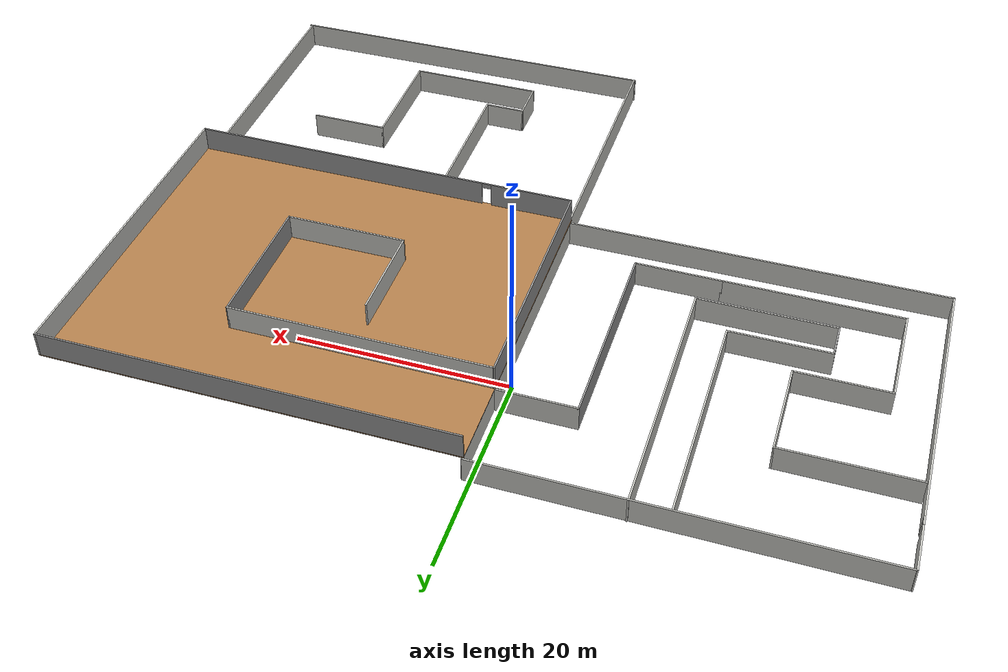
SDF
<?xml version='1.0'?>
<sdf version='1.6'>
  <model name='Surround_2_levels'>
    <pose frame=''>1.94032 -17.2813 0 0 -0 0</pose>
    <link name='Floor_1'>
      <collision name='Floor_1_Collision'>
        <geometry>
          <box>
            <size>38.5579 31.6083 0.1</size>
          </box>
        </geometry>
        <pose frame=''>0 0 0.05 0 -0 0</pose>
      </collision>
      <visual name='Floor_1_Visual'>
        <pose frame=''>0 0 0.05 0 -0 0</pose>
        <geometry>
          <box>
            <size>38.5579 31.6083 0.1</size>
          </box>
        </geometry>
        <material>
          <script>
            <uri>file://media/materials/scripts/gazebo.material</uri>
            <name>Gazebo/Wood</name>
          </script>
          <ambient>1 1 1 1</ambient>
        </material>
      </visual>
      <pose frame=''>17.8862 12.4724 2.5 0 -0 0</pose>
    </link>
    <link name='Wall_101'>
      <collision name='Wall_101_Collision'>
        <geometry>
          <box>
            <size>16 0.15 2.5</size>
          </box>
        </geometry>
        <pose frame=''>0 0 1.25 0 -0 0</pose>
      </collision>
      <visual name='Wall_101_Visual'>
        <pose frame=''>0 0 1.25 0 -0 0</pose>
        <geometry>
          <box>
            <size>16 0.15 2.5</size>
          </box>
        </geometry>
        <material>
          <script>
            <uri>file://media/materials/scripts/gazebo.material</uri>
            <name>Gazebo/CeilingTiled</name>
          </script>
          <ambient>1 1 1 1</ambient>
        </material>
      </visual>
      <pose frame=''>12.3955 -11.3883 0 0 0 -1.5708</pose>
    </link>
    <link name='Wall_102'>
      <collision name='Wall_102_Collision'>
        <geometry>
          <box>
            <size>4 0.15 2.5</size>
          </box>
        </geometry>
        <pose frame=''>0 0 1.25 0 -0 0</pose>
      </collision>
      <visual name='Wall_102_Visual'>
        <pose frame=''>0 0 1.25 0 -0 0</pose>
        <geometry>
          <box>
            <size>4 0.15 2.5</size>
          </box>
        </geometry>
        <material>
          <script>
            <uri>file://media/materials/scripts/gazebo.material</uri>
            <name>Gazebo/CeilingTiled</name>
          </script>
          <ambient>1 1 1 1</ambient>
        </material>
      </visual>
      <pose frame=''>10.4705 -19.3133 0 0 -0 3.14159</pose>
    </link>
    <link name='Wall_103'>
      <collision name='Wall_103_Collision'>
        <geometry>
          <box>
            <size>4 0.15 2.5</size>
          </box>
        </geometry>
        <pose frame=''>0 0 1.25 0 -0 0</pose>
      </collision>
      <visual name='Wall_103_Visual'>
        <pose frame=''>0 0 1.25 0 -0 0</pose>
        <geometry>
          <box>
            <size>4 0.15 2.5</size>
          </box>
        </geometry>
        <material>
          <script>
            <uri>file://media/materials/scripts/gazebo.material</uri>
            <name>Gazebo/CeilingTiled</name>
          </script>
          <ambient>1 1 1 1</ambient>
        </material>
      </visual>
      <pose frame=''>8.54553 -21.2383 0 0 0 -1.5708</pose>
    </link>
    <link name='Wall_104'>
      <collision name='Wall_104_Collision'>
        <geometry>
          <box>
            <size>13 0.15 2.5</size>
          </box>
        </geometry>
        <pose frame=''>0 0 1.25 0 -0 0</pose>
      </collision>
      <visual name='Wall_104_Visual'>
        <pose frame=''>0 0 1.25 0 -0 0</pose>
        <geometry>
          <box>
            <size>13 0.15 2.5</size>
          </box>
        </geometry>
        <material>
          <script>
            <uri>file://media/materials/scripts/gazebo.material</uri>
            <name>Gazebo/CeilingTiled</name>
          </script>
          <ambient>1 1 1 1</ambient>
        </material>
      </visual>
      <pose frame=''>14.9705 -23.1633 0 0 -0 0</pose>
    </link>
    <link name='Wall_105'>
      <collision name='Wall_105_Collision'>
        <geometry>
          <box>
            <size>11.25 0.15 2.5</size>
          </box>
        </geometry>
        <pose frame=''>0 0 1.25 0 -0 0</pose>
      </collision>
      <visual name='Wall_105_Visual'>
        <pose frame=''>0 0 1.25 0 -0 0</pose>
        <geometry>
          <box>
            <size>11.25 0.15 2.5</size>
          </box>
        </geometry>
        <material>
          <script>
            <uri>file://media/materials/scripts/gazebo.material</uri>
            <name>Gazebo/CeilingTiled</name>
          </script>
          <ambient>1 1 1 1</ambient>
        </material>
      </visual>
      <pose frame=''>21.3955 -17.6133 0 0 -0 1.5708</pose>
    </link>
    <link name='Wall_106'>
      <collision name='Wall_106_Collision'>
        <geometry>
          <box>
            <size>7.5 0.15 2.5</size>
          </box>
        </geometry>
        <pose frame=''>0 0 1.25 0 -0 0</pose>
      </collision>
      <visual name='Wall_106_Visual'>
        <pose frame=''>0 0 1.25 0 -0 0</pose>
        <geometry>
          <box>
            <size>7.5 0.15 2.5</size>
          </box>
        </geometry>
        <material>
          <script>
            <uri>file://media/materials/scripts/gazebo.material</uri>
            <name>Gazebo/CeilingTiled</name>
          </script>
          <ambient>1 1 1 1</ambient>
        </material>
      </visual>
      <pose frame=''>25.0705 -12.0633 0 0 -0 0</pose>
    </link>
    <link name='Wall_110'>
      <collision name='Wall_110_Collision'>
        <geometry>
          <box>
            <size>23.5639 0.15 2.5</size>
          </box>
        </geometry>
        <pose frame=''>0 0 1.25 0 -0 0</pose>
      </collision>
      <visual name='Wall_110_Visual'>
        <pose frame=''>0 0 1.25 0 -0 0</pose>
        <geometry>
          <box>
            <size>23.5639 0.15 2.5</size>
          </box>
        </geometry>
        <material>
          <script>
            <uri>file://media/materials/scripts/gazebo.material</uri>
            <name>Gazebo/Grey</name>
          </script>
          <ambient>1 1 1 1</ambient>
        </material>
      </visual>
      <pose frame=''>-1.29066 8.47315 2.5 0 -0 1.5731</pose>
    </link>
    <link name='Wall_31'>
      <collision name='Wall_31_Collision'>
        <geometry>
          <box>
            <size>12.25 0.15 2.5</size>
          </box>
        </geometry>
        <pose frame=''>0 0 1.25 0 -0 0</pose>
      </collision>
      <visual name='Wall_31_Visual'>
        <pose frame=''>0 0 1.25 0 -0 0</pose>
        <geometry>
          <box>
            <size>12.25 0.15 2.5</size>
          </box>
        </geometry>
        <material>
          <script>
            <uri>file://media/materials/scripts/gazebo.material</uri>
            <name>Gazebo/CeilingTiled</name>
          </script>
          <ambient>1 1 1 1</ambient>
        </material>
      </visual>
      <pose frame=''>-30.8176 19.5301 0 0 -0 0</pose>
    </link>
    <link name='Wall_32'>
      <collision name='Wall_32_Collision'>
        <geometry>
          <box>
            <size>9.25 0.15 2.5</size>
          </box>
        </geometry>
        <pose frame=''>0 0 1.25 0 -0 0</pose>
      </collision>
      <visual name='Wall_32_Visual'>
        <pose frame=''>0 0 1.25 0 -0 0</pose>
        <geometry>
          <box>
            <size>9.25 0.15 2.5</size>
          </box>
        </geometry>
        <material>
          <script>
            <uri>file://media/materials/scripts/gazebo.material</uri>
            <name>Gazebo/CeilingTiled</name>
          </script>
          <ambient>1 1 1 1</ambient>
        </material>
      </visual>
      <pose frame=''>-24.7676 14.9801 0 0 0 -1.5708</pose>
    </link>
    <link name='Wall_36'>
      <collision name='Wall_36_Collision'>
        <geometry>
          <box>
            <size>8.75 0.15 2.5</size>
          </box>
        </geometry>
        <pose frame=''>0 0 1.25 0 -0 0</pose>
      </collision>
      <visual name='Wall_36_Visual'>
        <pose frame=''>0 0 1.25 0 -0 0</pose>
        <geometry>
          <box>
            <size>8.75 0.15 2.5</size>
          </box>
        </geometry>
        <material>
          <script>
            <uri>file://media/materials/scripts/gazebo.material</uri>
            <name>Gazebo/CeilingTiled</name>
          </script>
          <ambient>1 1 1 1</ambient>
        </material>
      </visual>
      <pose frame=''>-29.0676 10.4301 0 0 -0 3.14159</pose>
    </link>
    <link name='Wall_37'>
      <collision name='Wall_37_Collision'>
        <geometry>
          <box>
            <size>9.75 0.15 2.5</size>
          </box>
        </geometry>
        <pose frame=''>0 0 1.25 0 -0 0</pose>
      </collision>
      <visual name='Wall_37_Visual'>
        <pose frame=''>0 0 1.25 0 -0 0</pose>
        <geometry>
          <box>
            <size>9.75 0.15 2.5</size>
          </box>
        </geometry>
        <material>
          <script>
            <uri>file://media/materials/scripts/gazebo.material</uri>
            <name>Gazebo/CeilingTiled</name>
          </script>
          <ambient>1 1 1 1</ambient>
        </material>
      </visual>
      <pose frame=''>-33.3676 5.63008 0 0 0 -1.5708</pose>
    </link>
    <link name='Wall_38'>
      <collision name='Wall_38_Collision'>
        <geometry>
          <box>
            <size>16.75 0.15 2.5</size>
          </box>
        </geometry>
        <pose frame=''>0 0 1.25 0 -0 0</pose>
      </collision>
      <visual name='Wall_38_Visual'>
        <pose frame=''>0 0 1.25 0 -0 0</pose>
        <geometry>
          <box>
            <size>16.75 0.15 2.5</size>
          </box>
        </geometry>
        <material>
          <script>
            <uri>file://media/materials/scripts/gazebo.material</uri>
            <name>Gazebo/CeilingTiled</name>
          </script>
          <ambient>1 1 1 1</ambient>
        </material>
      </visual>
      <pose frame=''>-25.0676 0.83008 0 0 -0 0</pose>
    </link>
    <link name='Wall_39'>
      <collision name='Wall_39_Collision'>
        <geometry>
          <box>
            <size>8.25 0.15 2.5</size>
          </box>
        </geometry>
        <pose frame=''>0 0 1.25 0 -0 0</pose>
      </collision>
      <visual name='Wall_39_Visual'>
        <pose frame=''>0 0 1.25 0 -0 0</pose>
        <geometry>
          <box>
            <size>8.25 0.15 2.5</size>
          </box>
        </geometry>
        <material>
          <script>
            <uri>file://media/materials/scripts/gazebo.material</uri>
            <name>Gazebo/CeilingTiled</name>
          </script>
          <ambient>1 1 1 1</ambient>
        </material>
      </visual>
      <pose frame=''>-12.7176 0.83008 0 0 -0 0</pose>
    </link>
    <link name='Wall_40'>
      <collision name='Wall_40_Collision'>
        <geometry>
          <box>
            <size>19.5 0.15 2.5</size>
          </box>
        </geometry>
        <pose frame=''>0 0 1.25 0 -0 0</pose>
      </collision>
      <visual name='Wall_40_Visual'>
        <pose frame=''>0 0 1.25 0 -0 0</pose>
        <geometry>
          <box>
            <size>19.5 0.15 2.5</size>
          </box>
        </geometry>
        <material>
          <script>
            <uri>file://media/materials/scripts/gazebo.material</uri>
            <name>Gazebo/Grey</name>
          </script>
          <ambient>1 1 1 1</ambient>
        </material>
      </visual>
      <pose frame=''>-8.66764 10.5051 0 0 -0 1.5708</pose>
    </link>
    <link name='Wall_41'>
      <collision name='Wall_41_Collision'>
        <geometry>
          <box>
            <size>7.5 0.15 2.5</size>
          </box>
        </geometry>
        <pose frame=''>0 0 1.25 0 -0 0</pose>
      </collision>
      <visual name='Wall_41_Visual'>
        <pose frame=''>0 0 1.25 0 -0 0</pose>
        <geometry>
          <box>
            <size>7.5 0.15 2.5</size>
          </box>
        </geometry>
        <material>
          <script>
            <uri>file://media/materials/scripts/gazebo.material</uri>
            <name>Gazebo/CeilingTiled</name>
          </script>
          <ambient>1 1 1 1</ambient>
        </material>
      </visual>
      <pose frame=''>-4.99264 20.1801 0 0 -0 0</pose>
    </link>
    <link name='Wall_43'>
      <collision name='Wall_43_Collision'>
        <geometry>
          <box>
            <size>21.25 0.15 2.5</size>
          </box>
        </geometry>
        <pose frame=''>0 0 1.25 0 -0 0</pose>
      </collision>
      <visual name='Wall_43_Visual'>
        <pose frame=''>0 0 1.25 0 -0 0</pose>
        <geometry>
          <box>
            <size>21.25 0.15 2.5</size>
          </box>
        </geometry>
        <material>
          <script>
            <uri>file://media/materials/scripts/gazebo.material</uri>
            <name>Gazebo/CeilingTiled</name>
          </script>
          <ambient>1 1 1 1</ambient>
        </material>
      </visual>
      <pose frame=''>-18.4838 17.7652 0 0 0 -1.5708</pose>
    </link>
    <link name='Wall_44'>
      <collision name='Wall_44_Collision'>
        <geometry>
          <box>
            <size>9.5 0.15 2.5</size>
          </box>
        </geometry>
        <pose frame=''>0 0 1.25 0 -0 0</pose>
      </collision>
      <visual name='Wall_44_Visual'>
        <pose frame=''>0 0 1.25 0 -0 0</pose>
        <geometry>
          <box>
            <size>9.5 0.15 2.5</size>
          </box>
        </geometry>
        <material>
          <script>
            <uri>file://media/materials/scripts/gazebo.material</uri>
            <name>Gazebo/CeilingTiled</name>
          </script>
          <ambient>1 1 1 1</ambient>
        </material>
      </visual>
      <pose frame=''>-23.1588 7.21519 0 0 -0 3.14159</pose>
    </link>
    <link name='Wall_45'>
      <collision name='Wall_45_Collision'>
        <geometry>
          <box>
            <size>3.5 0.15 2.5</size>
          </box>
        </geometry>
        <pose frame=''>0 0 1.25 0 -0 0</pose>
      </collision>
      <visual name='Wall_45_Visual'>
        <pose frame=''>0 0 1.25 0 -0 0</pose>
        <geometry>
          <box>
            <size>3.5 0.15 2.5</size>
          </box>
        </geometry>
        <material>
          <script>
            <uri>file://media/materials/scripts/gazebo.material</uri>
            <name>Gazebo/Grey</name>
          </script>
          <ambient>1 1 1 1</ambient>
        </material>
      </visual>
      <pose frame=''>-27.8338 5.54019 0 0 0 -1.5708</pose>
    </link>
    <link name='Wall_46'>
      <collision name='Wall_46_Collision'>
        <geometry>
          <box>
            <size>13 0.15 2.5</size>
          </box>
        </geometry>
        <pose frame=''>0 0 1.25 0 -0 0</pose>
      </collision>
      <visual name='Wall_46_Visual'>
        <pose frame=''>0 0 1.25 0 -0 0</pose>
        <geometry>
          <box>
            <size>13 0.15 2.5</size>
          </box>
        </geometry>
        <material>
          <script>
            <uri>file://media/materials/scripts/gazebo.material</uri>
            <name>Gazebo/CeilingTiled</name>
          </script>
          <ambient>1 1 1 1</ambient>
        </material>
      </visual>
      <pose frame=''>-21.4088 3.86519 0 0 -0 0</pose>
    </link>
    <link name='Wall_47'>
      <collision name='Wall_47_Collision'>
        <geometry>
          <box>
            <size>24.75 0.15 2.5</size>
          </box>
        </geometry>
        <pose frame=''>0 0 1.25 0 -0 0</pose>
      </collision>
      <visual name='Wall_47_Visual'>
        <pose frame=''>0 0 1.25 0 -0 0</pose>
        <geometry>
          <box>
            <size>24.75 0.15 2.5</size>
          </box>
        </geometry>
        <material>
          <script>
            <uri>file://media/materials/scripts/gazebo.material</uri>
            <name>Gazebo/CeilingTiled</name>
          </script>
          <ambient>1 1 1 1</ambient>
        </material>
      </visual>
      <pose frame=''>-14.9838 16.1652 0 0 -0 1.5708</pose>
    </link>
    <link name='Wall_5'>
      <pose frame=''>-37.0898 12.6252 0 0 -0 1.5708</pose>
      <visual name='Wall_5_Visual_0'>
        <pose frame=''>-2.75715 0 1.25 0 -0 0</pose>
        <geometry>
          <box>
            <size>26.2357 0.15 2.5</size>
          </box>
        </geometry>
        <material>
          <script>
            <uri>file://media/materials/scripts/gazebo.material</uri>
            <name>Gazebo/CeilingTiled</name>
          </script>
          <ambient>1 1 1 1</ambient>
        </material>
      </visual>
      <collision name='Wall_5_Collision_0'>
        <geometry>
          <box>
            <size>26.2357 0.15 2.5</size>
          </box>
        </geometry>
        <pose frame=''>-2.75715 0 1.25 0 -0 0</pose>
      </collision>
      <visual name='Wall_5_Visual_1'>
        <pose frame=''>13.5678 0 1.25 0 -0 0</pose>
        <geometry>
          <box>
            <size>4.6143 0.15 2.5</size>
          </box>
        </geometry>
        <material>
          <script>
            <uri>file://media/materials/scripts/gazebo.material</uri>
            <name>Gazebo/CeilingTiled</name>
          </script>
          <ambient>1 1 1 1</ambient>
        </material>
      </visual>
      <collision name='Wall_5_Collision_1'>
        <geometry>
          <box>
            <size>4.6143 0.15 2.5</size>
          </box>
        </geometry>
        <pose frame=''>13.5678 0 1.25 0 -0 0</pose>
      </collision>
      <visual name='Wall_5_Visual_2'>
        <pose frame=''>10.8107 0 2.25 0 -0 0</pose>
        <geometry>
          <box>
            <size>0.9 0.15 0.5</size>
          </box>
        </geometry>
        <material>
          <script>
            <uri>file://media/materials/scripts/gazebo.material</uri>
            <name>Gazebo/CeilingTiled</name>
          </script>
          <ambient>1 1 1 1</ambient>
        </material>
      </visual>
      <collision name='Wall_5_Collision_2'>
        <geometry>
          <box>
            <size>0.9 0.15 0.5</size>
          </box>
        </geometry>
        <pose frame=''>10.8107 0 2.25 0 -0 0</pose>
      </collision>
    </link>
    <link name='Wall_50'>
      <collision name='Wall_50_Collision'>
        <geometry>
          <box>
            <size>31.6081 0.15 2.5</size>
          </box>
        </geometry>
        <pose frame=''>0 0 1.25 0 -0 0</pose>
      </collision>
      <visual name='Wall_50_Visual'>
        <pose frame=''>0 0 1.25 0 -0 0</pose>
        <geometry>
          <box>
            <size>31.6081 0.15 2.5</size>
          </box>
        </geometry>
        <material>
          <script>
            <uri>file://media/materials/scripts/gazebo.material</uri>
            <name>Gazebo/CeilingTiled</name>
          </script>
          <ambient>1 1 1 1</ambient>
        </material>
      </visual>
      <pose frame=''>36.9656 12.4724 2.5 0 0 -1.57868</pose>
    </link>
    <link name='Wall_67'>
      <collision name='Wall_67_Collision'>
        <geometry>
          <box>
            <size>24.5 0.15 2.5</size>
          </box>
        </geometry>
        <pose frame=''>0 0 1.25 0 -0 0</pose>
      </collision>
      <visual name='Wall_67_Visual'>
        <pose frame=''>0 0 1.25 0 -0 0</pose>
        <geometry>
          <box>
            <size>24.5 0.15 2.5</size>
          </box>
        </geometry>
        <material>
          <script>
            <uri>file://media/materials/scripts/gazebo.material</uri>
            <name>Gazebo/CeilingTiled</name>
          </script>
          <ambient>1 1 1 1</ambient>
        </material>
      </visual>
      <pose frame=''>10.8574 20.1801 2.5 0 -0 0</pose>
    </link>
    <link name='Wall_68'>
      <collision name='Wall_68_Collision'>
        <geometry>
          <box>
            <size>13.25 0.15 2.5</size>
          </box>
        </geometry>
        <pose frame=''>0 0 1.25 0 -0 0</pose>
      </collision>
      <visual name='Wall_68_Visual'>
        <pose frame=''>0 0 1.25 0 -0 0</pose>
        <geometry>
          <box>
            <size>13.25 0.15 2.5</size>
          </box>
        </geometry>
        <material>
          <script>
            <uri>file://media/materials/scripts/gazebo.material</uri>
            <name>Gazebo/Grey</name>
          </script>
          <ambient>1 1 1 1</ambient>
        </material>
      </visual>
      <pose frame=''>23.0324 13.6301 2.5 0 0 -1.5708</pose>
    </link>
    <link name='Wall_69'>
      <collision name='Wall_69_Collision'>
        <geometry>
          <box>
            <size>11.5 0.15 2.5</size>
          </box>
        </geometry>
        <pose frame=''>0 0 1.25 0 -0 0</pose>
      </collision>
      <visual name='Wall_69_Visual'>
        <pose frame=''>0 0 1.25 0 -0 0</pose>
        <geometry>
          <box>
            <size>11.5 0.15 2.5</size>
          </box>
        </geometry>
        <material>
          <script>
            <uri>file://media/materials/scripts/gazebo.material</uri>
            <name>Gazebo/CeilingTiled</name>
          </script>
          <ambient>1 1 1 1</ambient>
        </material>
      </visual>
      <pose frame=''>17.3574 7.08008 2.5 0 -0 3.14159</pose>
    </link>
    <link name='Wall_7'>
      <collision name='Wall_7_Collision'>
        <geometry>
          <box>
            <size>31.5 0.15 2.5</size>
          </box>
        </geometry>
        <pose frame=''>0 0 1.25 0 -0 0</pose>
      </collision>
      <visual name='Wall_7_Visual'>
        <pose frame=''>0 0 1.25 0 -0 0</pose>
        <geometry>
          <box>
            <size>31.5 0.15 2.5</size>
          </box>
        </geometry>
        <material>
          <script>
            <uri>file://media/materials/scripts/gazebo.material</uri>
            <name>Gazebo/CeilingTiled</name>
          </script>
          <ambient>1 1 1 1</ambient>
        </material>
      </visual>
      <pose frame=''>-1.25605 12.6845 0 0 0 -1.5708</pose>
    </link>
    <link name='Wall_70'>
      <collision name='Wall_70_Collision'>
        <geometry>
          <box>
            <size>9.25 0.15 2.5</size>
          </box>
        </geometry>
        <pose frame=''>0 0 1.25 0 -0 0</pose>
      </collision>
      <visual name='Wall_70_Visual'>
        <pose frame=''>0 0 1.25 0 -0 0</pose>
        <geometry>
          <box>
            <size>9.25 0.15 2.5</size>
          </box>
        </geometry>
        <material>
          <script>
            <uri>file://media/materials/scripts/gazebo.material</uri>
            <name>Gazebo/CeilingTiled</name>
          </script>
          <ambient>1 1 1 1</ambient>
        </material>
      </visual>
      <pose frame=''>11.6824 11.6301 2.5 0 -0 1.5708</pose>
    </link>
    <link name='Wall_86'>
      <collision name='Wall_86_Collision'>
        <geometry>
          <box>
            <size>38.4704 0.15 2.5</size>
          </box>
        </geometry>
        <pose frame=''>0 0 1.25 0 -0 0</pose>
      </collision>
      <visual name='Wall_86_Visual'>
        <pose frame=''>0 0 1.25 0 -0 0</pose>
        <geometry>
          <box>
            <size>38.4704 0.15 2.5</size>
          </box>
        </geometry>
        <material>
          <script>
            <uri>file://media/materials/scripts/gazebo.material</uri>
            <name>Gazebo/Grey</name>
          </script>
          <ambient>1 1 1 1</ambient>
        </material>
      </visual>
      <pose frame=''>17.848 28.2011 2.5 0 0 -8e-06</pose>
    </link>
    <link name='Wall_89'>
      <pose frame=''>17.7863 -3.23379 2.5 0 -0 0</pose>
      <visual name='Wall_89_Visual_0'>
        <pose frame=''>-15.1344 0 1.25 0 -0 0</pose>
        <geometry>
          <box>
            <size>7.98127 0.15 2.5</size>
          </box>
        </geometry>
        <material>
          <script>
            <uri>file://media/materials/scripts/gazebo.material</uri>
            <name>Gazebo/Grey</name>
          </script>
          <ambient>1 1 1 1</ambient>
        </material>
      </visual>
      <collision name='Wall_89_Collision_0'>
        <geometry>
          <box>
            <size>7.98127 0.15 2.5</size>
          </box>
        </geometry>
        <pose frame=''>-15.1344 0 1.25 0 -0 0</pose>
      </collision>
      <visual name='Wall_89_Visual_1'>
        <pose frame=''>4.44064 0 1.25 0 -0 0</pose>
        <geometry>
          <box>
            <size>29.3687 0.15 2.5</size>
          </box>
        </geometry>
        <material>
          <script>
            <uri>file://media/materials/scripts/gazebo.material</uri>
            <name>Gazebo/Grey</name>
          </script>
          <ambient>1 1 1 1</ambient>
        </material>
      </visual>
      <collision name='Wall_89_Collision_1'>
        <geometry>
          <box>
            <size>29.3687 0.15 2.5</size>
          </box>
        </geometry>
        <pose frame=''>4.44064 0 1.25 0 -0 0</pose>
      </collision>
      <visual name='Wall_89_Visual_2'>
        <pose frame=''>-10.6937 0 2.25 0 -0 0</pose>
        <geometry>
          <box>
            <size>0.9 0.15 0.5</size>
          </box>
        </geometry>
        <material>
          <script>
            <uri>file://media/materials/scripts/gazebo.material</uri>
            <name>Gazebo/Grey</name>
          </script>
          <ambient>1 1 1 1</ambient>
        </material>
      </visual>
      <collision name='Wall_89_Collision_2'>
        <geometry>
          <box>
            <size>0.9 0.15 0.5</size>
          </box>
        </geometry>
        <pose frame=''>-10.6937 0 2.25 0 -0 0</pose>
      </collision>
    </link>
    <link name='Wall_91'>
      <collision name='Wall_91_Collision'>
        <geometry>
          <box>
            <size>35.9839 0.15 2.5</size>
          </box>
        </geometry>
        <pose frame=''>0 0 1.25 0 -0 0</pose>
      </collision>
      <visual name='Wall_91_Visual'>
        <pose frame=''>0 0 1.25 0 -0 0</pose>
        <geometry>
          <box>
            <size>35.9839 0.15 2.5</size>
          </box>
        </geometry>
        <material>
          <script>
            <uri>file://media/materials/scripts/gazebo.material</uri>
            <name>Gazebo/CeilingTiled</name>
          </script>
          <ambient>1 1 1 1</ambient>
        </material>
      </visual>
      <pose frame=''>-19.1729 28.3924 0 0 0 -0.001832</pose>
    </link>
    <link name='Wall_94'>
      <collision name='Wall_94_Collision'>
        <geometry>
          <box>
            <size>35.9843 0.15 2.5</size>
          </box>
        </geometry>
        <pose frame=''>0 0 1.25 0 -0 0</pose>
      </collision>
      <visual name='Wall_94_Visual'>
        <pose frame=''>0 0 1.25 0 -0 0</pose>
        <geometry>
          <box>
            <size>35.9843 0.15 2.5</size>
          </box>
        </geometry>
        <material>
          <script>
            <uri>file://media/materials/scripts/gazebo.material</uri>
            <name>Gazebo/CeilingTiled</name>
          </script>
          <ambient>1 1 1 1</ambient>
        </material>
      </visual>
      <pose frame=''>-19.1729 -3.08265 0 0 -0 0.005145</pose>
    </link>
    <link name='Wall_96'>
      <collision name='Wall_96_Collision'>
        <geometry>
          <box>
            <size>37.7901 0.15 2.5</size>
          </box>
        </geometry>
        <pose frame=''>0 0 1.25 0 -0 0</pose>
      </collision>
      <visual name='Wall_96_Visual'>
        <pose frame=''>0 0 1.25 0 -0 0</pose>
        <geometry>
          <box>
            <size>37.7901 0.15 2.5</size>
          </box>
        </geometry>
        <material>
          <script>
            <uri>file://media/materials/scripts/gazebo.material</uri>
            <name>Gazebo/CeilingTiled</name>
          </script>
          <ambient>1 1 1 1</ambient>
        </material>
      </visual>
      <pose frame=''>17.5638 -3.0723 0 0 0 -0.004348</pose>
    </link>
    <link name='Wall_97'>
      <collision name='Wall_97_Collision'>
        <geometry>
          <box>
            <size>25.25 0.15 2.5</size>
          </box>
        </geometry>
        <pose frame=''>0 0 1.25 0 -0 0</pose>
      </collision>
      <visual name='Wall_97_Visual'>
        <pose frame=''>0 0 1.25 0 -0 0</pose>
        <geometry>
          <box>
            <size>25.25 0.15 2.5</size>
          </box>
        </geometry>
        <material>
          <script>
            <uri>file://media/materials/scripts/gazebo.material</uri>
            <name>Gazebo/CeilingTiled</name>
          </script>
          <ambient>1 1 1 1</ambient>
        </material>
      </visual>
      <pose frame=''>36.22 -15.7041 0 0 0 -1.5708</pose>
    </link>
    <link name='Wall_98'>
      <collision name='Wall_98_Collision'>
        <geometry>
          <box>
            <size>37.8196 0.15 2.5</size>
          </box>
        </geometry>
        <pose frame=''>0 0 1.25 0 -0 0</pose>
      </collision>
      <visual name='Wall_98_Visual'>
        <pose frame=''>0 0 1.25 0 -0 0</pose>
        <geometry>
          <box>
            <size>37.8196 0.15 2.5</size>
          </box>
        </geometry>
        <material>
          <script>
            <uri>file://media/materials/scripts/gazebo.material</uri>
            <name>Gazebo/CeilingTiled</name>
          </script>
          <ambient>1 1 1 1</ambient>
        </material>
      </visual>
      <pose frame=''>17.5491 -28.3595 0 0 0 -3.136</pose>
    </link>
    <link name='Wall_99'>
      <collision name='Wall_99_Collision'>
        <geometry>
          <box>
            <size>25.5 0.15 2.5</size>
          </box>
        </geometry>
        <pose frame=''>0 0 1.25 0 -0 0</pose>
      </collision>
      <visual name='Wall_99_Visual'>
        <pose frame=''>0 0 1.25 0 -0 0</pose>
        <geometry>
          <box>
            <size>25.5 0.15 2.5</size>
          </box>
        </geometry>
        <material>
          <script>
            <uri>file://media/materials/scripts/gazebo.material</uri>
            <name>Gazebo/CeilingTiled</name>
          </script>
          <ambient>1 1 1 1</ambient>
        </material>
      </visual>
      <pose frame=''>-1.19182 -15.7898 0 0 -0 1.5708</pose>
    </link>
    <static>1</static>
  </model>
</sdf>
